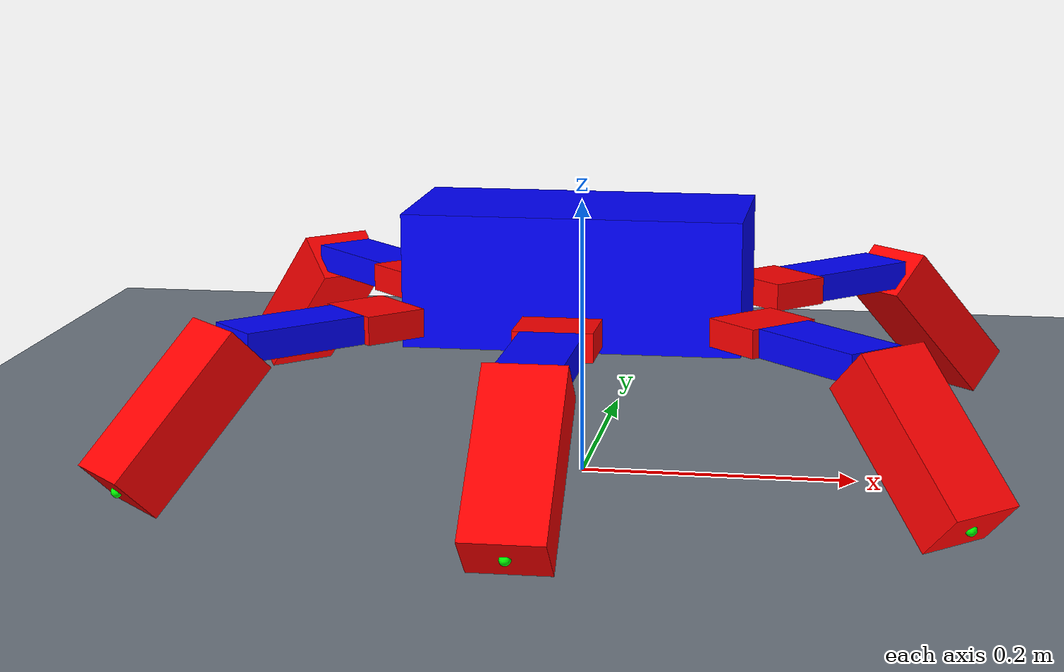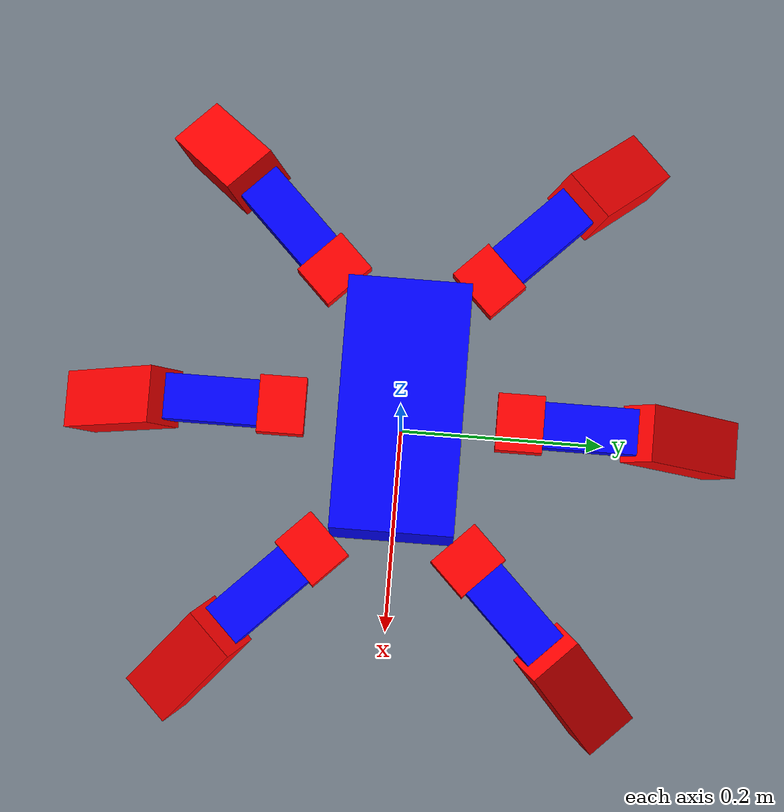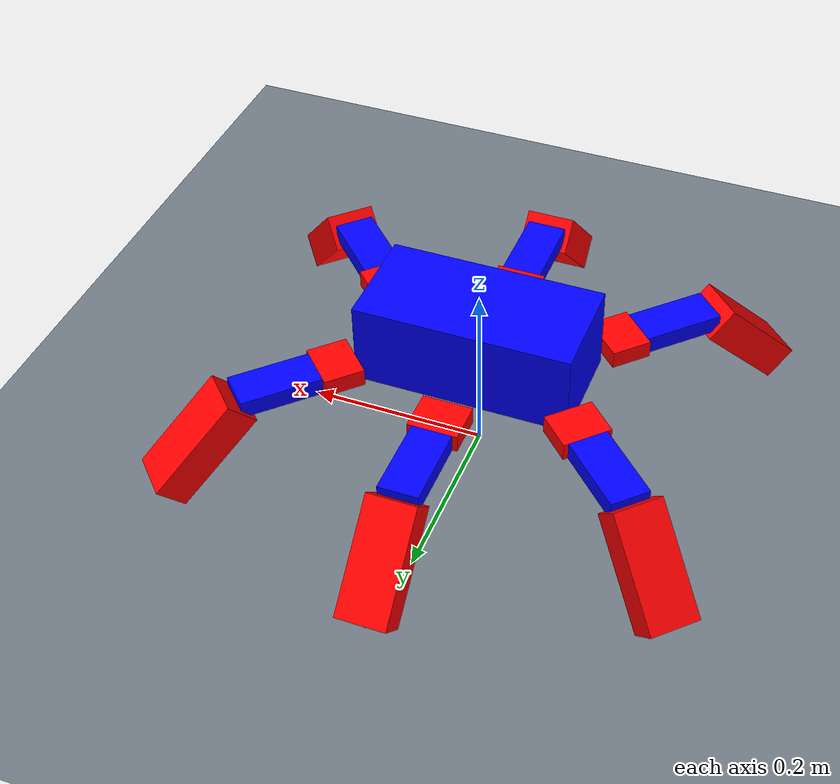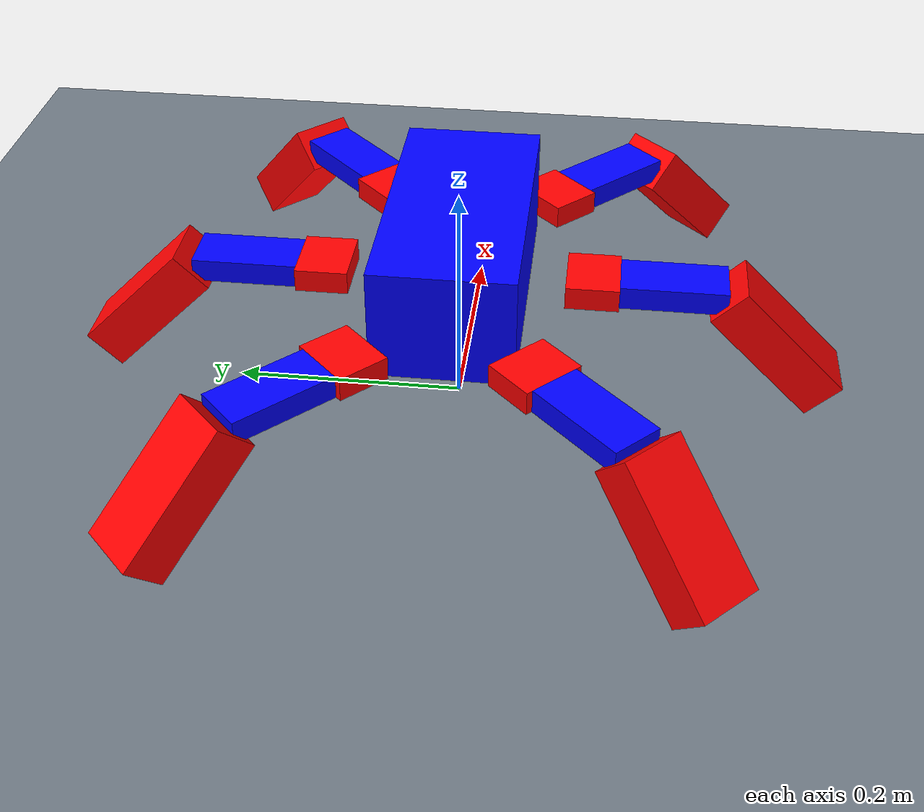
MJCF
<?xml version='1.0' encoding='utf-8'?>
<mujoco model="hexapod_sim2sim">
  <compiler angle="radian" autolimits="true" />
  <asset>
    <texture name="ground_grid_texture" type="2d" builtin="checker" width="512" height="512" rgb1="0.16 0.20 0.24" rgb2="0.72 0.76 0.80" mark="edge" markrgb="0.05 0.05 0.05" />
    <material name="ground_grid" texture="ground_grid_texture" texrepeat="5 5" texuniform="true" reflectance="0.05" />
  </asset>
  <option timestep="0.008333333333333333" gravity="0 0 -9.81" integrator="implicitfast" solver="Newton" iterations="100" />
  <statistic center="0 0 0.08" extent="0.8" />
  <visual>
    <headlight ambient="0.35 0.35 0.35" diffuse="0.8 0.8 0.8" />
    <rgba haze="0.15 0.25 0.35 1" />
  </visual>
  <worldbody>
    <light name="sun" pos="0 0 2" dir="0 0 -1" directional="true" />
    <geom name="ground" type="plane" size="0 0 0.05" material="ground_grid" friction="0.4 0.005 0.0001" contype="0" conaffinity="1" />
    <body name="base_link" pos="0 0 0.15">
      <freejoint name="base_free_joint" />
      <inertial pos="0 0 0" mass="1.396" fullinertia="0.003 0.008 0.008 0 0 0" />
      <site name="imu_site" pos="0 0 0" size="0.004" rgba="0 1 0 1" />
      <camera name="robot_follow" mode="trackcom" pos="-0.6 -0.6 0.35" xyaxes="0.707 -0.707 0 0.3 0.3 0.906" />
      <geom size="0.1195 0.0585 0.0475" type="box" rgba="0 0 1 1" name="base_collision" contype="1" conaffinity="0" friction="0.4 0.005 0.0001" />
      <body name="leg_2_1" pos="0.119 0.0585 -0.025" quat="0.923956 0 0 -0.382499">
        <inertial pos="0 0.0225 0" quat="0.5 0.5 0.5 0.5" mass="0.01" diaginertia="4.208e-06 2.854e-06 2.021e-06" />
        <joint name="body_leg_2" pos="0 0 0" axis="0 0 1" range="-0.3491 0.3491" actuatorfrcrange="-1.961 1.961" armature="0.0001" />
        <geom size="0.0275 0.01 0.0225" pos="0 0.0225 0" quat="0.707107 0.707107 0 0" type="box" rgba="1 0 0 1" name="robot_collision_1" contype="1" conaffinity="0" friction="0.4 0.005 0.0001" />
        <body name="leg_2_2" pos="0 0.045 0">
          <inertial pos="0 0.045 0" quat="0.707107 0 0 0.707107" mass="0.124" diaginertia="0.0001037 8.783e-05 2.414e-05" />
          <joint name="leg_2_1_2" pos="0 0 0" axis="1 0 0" range="-0.3491 0.3491" actuatorfrcrange="-1.961 1.961" armature="0.0001" />
          <geom size="0.022 0.01 0.045" pos="0 0.045 0" quat="0.707107 0.707107 0 0" type="box" rgba="0 0 1 1" name="robot_collision_2" contype="1" conaffinity="0" friction="0.4 0.005 0.0001" />
          <body name="leg_2_3" pos="0 0.09 0">
            <inertial pos="0 0.0446317 -0.0446317" quat="0.707083 0.00584636 -0.00584636 0.707083" mass="0.0101" diaginertia="1.57376e-05 1.47378e-05 4.04118e-06" />
            <joint name="leg_2_2_3" pos="0 0 0" axis="-1 0 0" range="-0.3491 0.3491" actuatorfrcrange="-1.961 1.961" armature="0.0001" />
            <geom size="0.0275 0.02 0.0625" pos="0 0.0441942 -0.0441942" quat="0.923956 0.382499 0 0" type="box" rgba="1 0 0 1" name="robot_collision_3" contype="1" conaffinity="0" friction="0.4 0.005 0.0001" />
            <site name="eef_2" pos="0 0.0883883476 -0.0883883476" size="0.004" rgba="0 1 0 1" />
          </body>
        </body>
      </body>
      <body name="leg_3_1" pos="0.119 -0.0585 -0.025" quat="0.923956 0 0 0.382499">
        <inertial pos="0 -0.0225 0" quat="0.5 0.5 0.5 0.5" mass="0.01" diaginertia="4.208e-06 2.854e-06 2.021e-06" />
        <joint name="body_leg_3" pos="0 0 0" axis="0 0 -1" range="-0.3491 0.3491" actuatorfrcrange="-1.961 1.961" armature="0.0001" />
        <geom size="0.0275 0.01 0.0225" pos="0 -0.0225 0" quat="0.707107 0.707107 0 0" type="box" rgba="1 0 0 1" name="robot_collision_4" contype="1" conaffinity="0" friction="0.4 0.005 0.0001" />
        <body name="leg_3_2" pos="0 -0.045 0">
          <inertial pos="0 -0.045 0" quat="0.707107 0 0 0.707107" mass="0.124" diaginertia="0.0001037 8.783e-05 2.414e-05" />
          <joint name="leg_3_1_2" pos="0 0 0" axis="-1 0 0" range="-0.3491 0.3491" actuatorfrcrange="-1.961 1.961" armature="0.0001" />
          <geom size="0.022 0.01 0.045" pos="0 -0.045 0" quat="0.707107 0.707107 0 0" type="box" rgba="0 0 1 1" name="robot_collision_5" contype="1" conaffinity="0" friction="0.4 0.005 0.0001" />
          <body name="leg_3_3" pos="0 -0.09 0">
            <inertial pos="0 -0.0446317 -0.0446317" quat="0.707083 -0.00584636 0.00584636 0.707083" mass="0.0101" diaginertia="1.57376e-05 1.47378e-05 4.04118e-06" />
            <joint name="leg_3_2_3" pos="0 0 0" axis="1 0 0" range="-0.3491 0.3491" actuatorfrcrange="-1.961 1.961" armature="0.0001" />
            <geom size="0.0275 0.02 0.0625" pos="0 -0.0441942 -0.0441942" quat="0.923956 -0.382499 0 0" type="box" rgba="1 0 0 1" name="robot_collision_6" contype="1" conaffinity="0" friction="0.4 0.005 0.0001" />
            <site name="eef_3" pos="0 -0.0883883476 -0.0883883476" size="0.004" rgba="0 1 0 1" />
          </body>
        </body>
      </body>
      <body name="leg_0_1" pos="-0.119 0.0585 -0.025" quat="0.923956 0 0 0.382499">
        <inertial pos="0 0.0225 0" quat="0.5 0.5 0.5 0.5" mass="0.01" diaginertia="4.208e-06 2.854e-06 2.021e-06" />
        <joint name="body_leg_0" pos="0 0 0" axis="0 0 1" range="-0.3491 0.3491" actuatorfrcrange="-1.961 1.961" armature="0.0001" />
        <geom size="0.0275 0.01 0.0225" pos="0 0.0225 0" quat="0.707107 0.707107 0 0" type="box" rgba="1 0 0 1" name="robot_collision_7" contype="1" conaffinity="0" friction="0.4 0.005 0.0001" />
        <body name="leg_0_2" pos="0 0.045 0">
          <inertial pos="0 0.045 0" quat="0.707107 0 0 0.707107" mass="0.124" diaginertia="0.0001037 8.783e-05 2.414e-05" />
          <joint name="leg_0_1_2" pos="0 0 0" axis="1 0 0" range="-0.3491 0.3491" actuatorfrcrange="-1.961 1.961" armature="0.0001" />
          <geom size="0.022 0.01 0.045" pos="0 0.045 0" quat="0.707107 0.707107 0 0" type="box" rgba="0 0 1 1" name="robot_collision_8" contype="1" conaffinity="0" friction="0.4 0.005 0.0001" />
          <body name="leg_0_3" pos="0 0.09 0">
            <inertial pos="0 0.0446317 -0.0446317" quat="0.707083 0.00584636 -0.00584636 0.707083" mass="0.0101" diaginertia="1.57376e-05 1.47378e-05 4.04118e-06" />
            <joint name="leg_0_2_3" pos="0 0 0" axis="-1 0 0" range="-0.3491 0.3491" actuatorfrcrange="-1.961 1.961" armature="0.0001" />
            <geom size="0.0275 0.02 0.0625" pos="0 0.0441942 -0.0441942" quat="0.923956 0.382499 0 0" type="box" rgba="1 0 0 1" name="robot_collision_9" contype="1" conaffinity="0" friction="0.4 0.005 0.0001" />
            <site name="eef_0" pos="0 0.0883883476 -0.0883883476" size="0.004" rgba="0 1 0 1" />
          </body>
        </body>
      </body>
      <body name="leg_5_1" pos="-0.119 -0.0585 -0.025" quat="0.923956 0 0 -0.382499">
        <inertial pos="0 -0.0225 0" quat="0.5 0.5 0.5 0.5" mass="0.01" diaginertia="4.208e-06 2.854e-06 2.021e-06" />
        <joint name="body_leg_5" pos="0 0 0" axis="0 0 -1" range="-0.3491 0.3491" actuatorfrcrange="-1.961 1.961" armature="0.0001" />
        <geom size="0.0275 0.01 0.0225" pos="0 -0.0225 0" quat="0.707107 0.707107 0 0" type="box" rgba="1 0 0 1" name="robot_collision_10" contype="1" conaffinity="0" friction="0.4 0.005 0.0001" />
        <body name="leg_5_2" pos="0 -0.045 0">
          <inertial pos="0 -0.045 0" quat="0.707107 0 0 0.707107" mass="0.124" diaginertia="0.0001037 8.783e-05 2.414e-05" />
          <joint name="leg_5_1_2" pos="0 0 0" axis="-1 0 0" range="-0.3491 0.3491" actuatorfrcrange="-1.961 1.961" armature="0.0001" />
          <geom size="0.022 0.01 0.045" pos="0 -0.045 0" quat="0.707107 0.707107 0 0" type="box" rgba="0 0 1 1" name="robot_collision_11" contype="1" conaffinity="0" friction="0.4 0.005 0.0001" />
          <body name="leg_5_3" pos="0 -0.09 0">
            <inertial pos="0 -0.0446317 -0.0446317" quat="0.707083 -0.00584636 0.00584636 0.707083" mass="0.0101" diaginertia="1.57376e-05 1.47378e-05 4.04118e-06" />
            <joint name="leg_5_2_3" pos="0 0 0" axis="1 0 0" range="-0.3491 0.3491" actuatorfrcrange="-1.961 1.961" armature="0.0001" />
            <geom size="0.0275 0.02 0.0625" pos="0 -0.0441942 -0.0441942" quat="0.923956 -0.382499 0 0" type="box" rgba="1 0 0 1" name="robot_collision_12" contype="1" conaffinity="0" friction="0.4 0.005 0.0001" />
            <site name="eef_5" pos="0 -0.0883883476 -0.0883883476" size="0.004" rgba="0 1 0 1" />
          </body>
        </body>
      </body>
      <body name="leg_1_1" pos="0 0.0915 -0.025">
        <inertial pos="0 0.0225 0" quat="0.5 0.5 0.5 0.5" mass="0.01" diaginertia="4.208e-06 2.854e-06 2.021e-06" />
        <joint name="body_leg_1" pos="0 0 0" axis="0 0 1" range="-0.3491 0.3491" actuatorfrcrange="-1.961 1.961" armature="0.0001" />
        <geom size="0.0275 0.01 0.0225" pos="0 0.0225 0" quat="0.707107 0.707107 0 0" type="box" rgba="1 0 0 1" name="robot_collision_13" contype="1" conaffinity="0" friction="0.4 0.005 0.0001" />
        <body name="leg_1_2" pos="0 0.045 0">
          <inertial pos="0 0.045 0" quat="0.707107 0 0 0.707107" mass="0.124" diaginertia="0.0001037 8.783e-05 2.414e-05" />
          <joint name="leg_1_1_2" pos="0 0 0" axis="1 0 0" range="-0.3491 0.3491" actuatorfrcrange="-1.961 1.961" armature="0.0001" />
          <geom size="0.022 0.01 0.045" pos="0 0.045 0" quat="0.707107 0.707107 0 0" type="box" rgba="0 0 1 1" name="robot_collision_14" contype="1" conaffinity="0" friction="0.4 0.005 0.0001" />
          <body name="leg_1_3" pos="0 0.09 0">
            <inertial pos="0 0.0446317 -0.0446317" quat="0.707083 0.00584636 -0.00584636 0.707083" mass="0.0101" diaginertia="1.57376e-05 1.47378e-05 4.04118e-06" />
            <joint name="leg_1_2_3" pos="0 0 0" axis="-1 0 0" range="-0.3491 0.3491" actuatorfrcrange="-1.961 1.961" armature="0.0001" />
            <geom size="0.0275 0.02 0.0625" pos="0 0.0441942 -0.0441942" quat="0.923956 0.382499 0 0" type="box" rgba="1 0 0 1" name="robot_collision_15" contype="1" conaffinity="0" friction="0.4 0.005 0.0001" />
            <site name="eef_1" pos="0 0.0883883476 -0.0883883476" size="0.004" rgba="0 1 0 1" />
          </body>
        </body>
      </body>
      <body name="leg_4_1" pos="0 -0.0915 -0.025">
        <inertial pos="0 -0.0225 0" quat="0.5 0.5 0.5 0.5" mass="0.01" diaginertia="4.208e-06 2.854e-06 2.021e-06" />
        <joint name="body_leg_4" pos="0 0 0" axis="0 0 -1" range="-0.3491 0.3491" actuatorfrcrange="-1.961 1.961" armature="0.0001" />
        <geom size="0.0275 0.01 0.0225" pos="0 -0.0225 0" quat="0.707107 0.707107 0 0" type="box" rgba="1 0 0 1" name="robot_collision_16" contype="1" conaffinity="0" friction="0.4 0.005 0.0001" />
        <body name="leg_4_2" pos="0 -0.045 0">
          <inertial pos="0 -0.045 0" quat="0.707107 0 0 0.707107" mass="0.124" diaginertia="0.0001037 8.783e-05 2.414e-05" />
          <joint name="leg_4_1_2" pos="0 0 0" axis="-1 0 0" range="-0.3491 0.3491" actuatorfrcrange="-1.961 1.961" armature="0.0001" />
          <geom size="0.022 0.01 0.045" pos="0 -0.045 0" quat="0.707107 0.707107 0 0" type="box" rgba="0 0 1 1" name="robot_collision_17" contype="1" conaffinity="0" friction="0.4 0.005 0.0001" />
          <body name="leg_4_3" pos="0 -0.09 0">
            <inertial pos="0 -0.0446317 -0.0446317" quat="0.707083 -0.00584636 0.00584636 0.707083" mass="0.0101" diaginertia="1.57376e-05 1.47378e-05 4.04118e-06" />
            <joint name="leg_4_2_3" pos="0 0 0" axis="1 0 0" range="-0.3491 0.3491" actuatorfrcrange="-1.961 1.961" armature="0.0001" />
            <geom size="0.0275 0.02 0.0625" pos="0 -0.0441942 -0.0441942" quat="0.923956 -0.382499 0 0" type="box" rgba="1 0 0 1" name="robot_collision_18" contype="1" conaffinity="0" friction="0.4 0.005 0.0001" />
            <site name="eef_4" pos="0 -0.0883883476 -0.0883883476" size="0.004" rgba="0 1 0 1" />
          </body>
        </body>
      </body>
    </body>
  </worldbody>
  <actuator>
    <position name="body_leg_2_position" joint="body_leg_2" kp="40" kv="2" ctrllimited="true" ctrlrange="-0.3491 0.3491" forcelimited="true" forcerange="-1.961 1.961" />
    <position name="leg_2_1_2_position" joint="leg_2_1_2" kp="50" kv="2.5" ctrllimited="true" ctrlrange="-0.3491 0.3491" forcelimited="true" forcerange="-1.961 1.961" />
    <position name="leg_2_2_3_position" joint="leg_2_2_3" kp="60" kv="3" ctrllimited="true" ctrlrange="-0.3491 0.3491" forcelimited="true" forcerange="-1.961 1.961" />
    <position name="body_leg_3_position" joint="body_leg_3" kp="40" kv="2" ctrllimited="true" ctrlrange="-0.3491 0.3491" forcelimited="true" forcerange="-1.961 1.961" />
    <position name="leg_3_1_2_position" joint="leg_3_1_2" kp="50" kv="2.5" ctrllimited="true" ctrlrange="-0.3491 0.3491" forcelimited="true" forcerange="-1.961 1.961" />
    <position name="leg_3_2_3_position" joint="leg_3_2_3" kp="60" kv="3" ctrllimited="true" ctrlrange="-0.3491 0.3491" forcelimited="true" forcerange="-1.961 1.961" />
    <position name="body_leg_0_position" joint="body_leg_0" kp="40" kv="2" ctrllimited="true" ctrlrange="-0.3491 0.3491" forcelimited="true" forcerange="-1.961 1.961" />
    <position name="leg_0_1_2_position" joint="leg_0_1_2" kp="50" kv="2.5" ctrllimited="true" ctrlrange="-0.3491 0.3491" forcelimited="true" forcerange="-1.961 1.961" />
    <position name="leg_0_2_3_position" joint="leg_0_2_3" kp="60" kv="3" ctrllimited="true" ctrlrange="-0.3491 0.3491" forcelimited="true" forcerange="-1.961 1.961" />
    <position name="body_leg_5_position" joint="body_leg_5" kp="40" kv="2" ctrllimited="true" ctrlrange="-0.3491 0.3491" forcelimited="true" forcerange="-1.961 1.961" />
    <position name="leg_5_1_2_position" joint="leg_5_1_2" kp="50" kv="2.5" ctrllimited="true" ctrlrange="-0.3491 0.3491" forcelimited="true" forcerange="-1.961 1.961" />
    <position name="leg_5_2_3_position" joint="leg_5_2_3" kp="60" kv="3" ctrllimited="true" ctrlrange="-0.3491 0.3491" forcelimited="true" forcerange="-1.961 1.961" />
    <position name="body_leg_1_position" joint="body_leg_1" kp="40" kv="2" ctrllimited="true" ctrlrange="-0.3491 0.3491" forcelimited="true" forcerange="-1.961 1.961" />
    <position name="leg_1_1_2_position" joint="leg_1_1_2" kp="50" kv="2.5" ctrllimited="true" ctrlrange="-0.3491 0.3491" forcelimited="true" forcerange="-1.961 1.961" />
    <position name="leg_1_2_3_position" joint="leg_1_2_3" kp="60" kv="3" ctrllimited="true" ctrlrange="-0.3491 0.3491" forcelimited="true" forcerange="-1.961 1.961" />
    <position name="body_leg_4_position" joint="body_leg_4" kp="40" kv="2" ctrllimited="true" ctrlrange="-0.3491 0.3491" forcelimited="true" forcerange="-1.961 1.961" />
    <position name="leg_4_1_2_position" joint="leg_4_1_2" kp="50" kv="2.5" ctrllimited="true" ctrlrange="-0.3491 0.3491" forcelimited="true" forcerange="-1.961 1.961" />
    <position name="leg_4_2_3_position" joint="leg_4_2_3" kp="60" kv="3" ctrllimited="true" ctrlrange="-0.3491 0.3491" forcelimited="true" forcerange="-1.961 1.961" />
  </actuator>
  <sensor>
    <framepos name="base_position" objtype="xbody" objname="base_link" />
    <framequat name="base_orientation" objtype="xbody" objname="base_link" />
    <velocimeter name="base_linear_velocity_body" site="imu_site" />
    <gyro name="base_angular_velocity_body" site="imu_site" />
  </sensor>
  <keyframe>
    <key name="home" qpos="0 0 0.15 1 0 0 0 0 0 0 0 0 0 0 0 0 0 0 0 0 0 0 0 0 0" ctrl="0 0 0 0 0 0 0 0 0 0 0 0 0 0 0 0 0 0" />
  </keyframe>
</mujoco>
